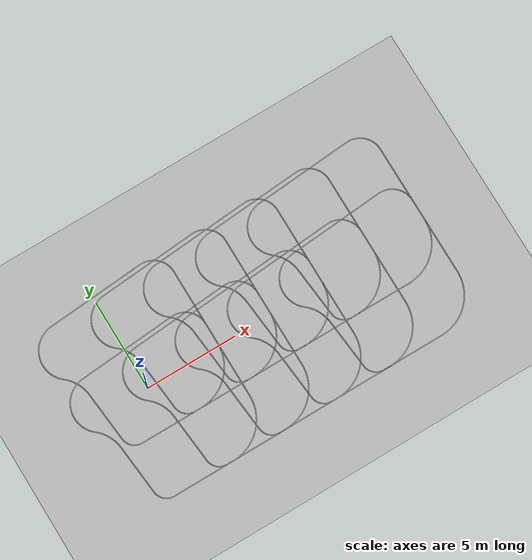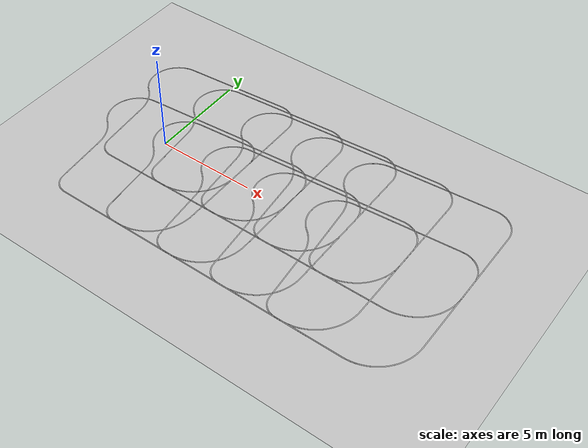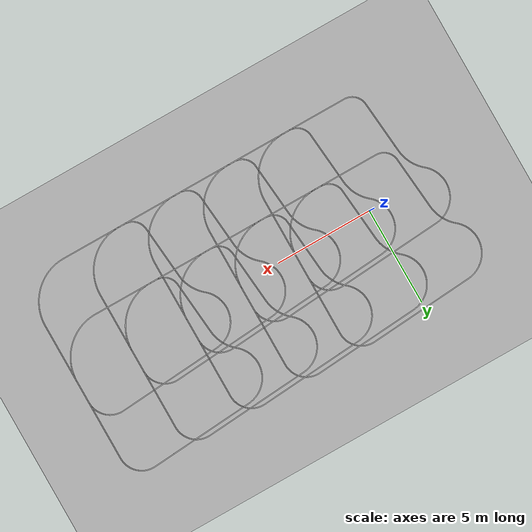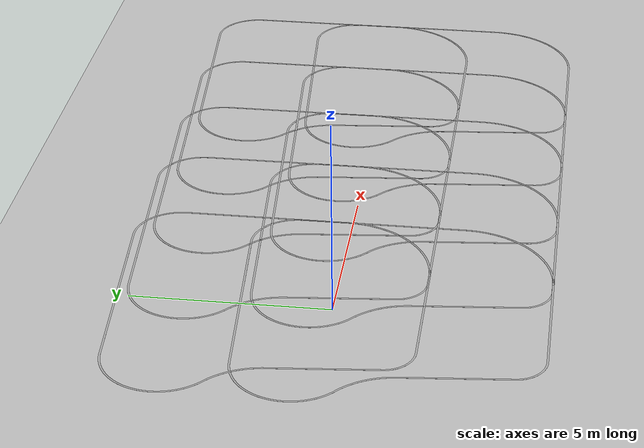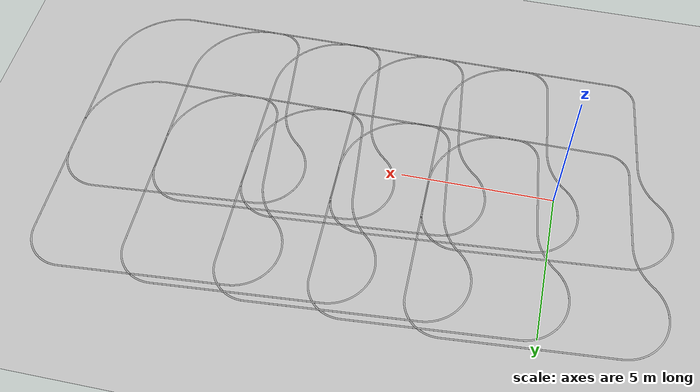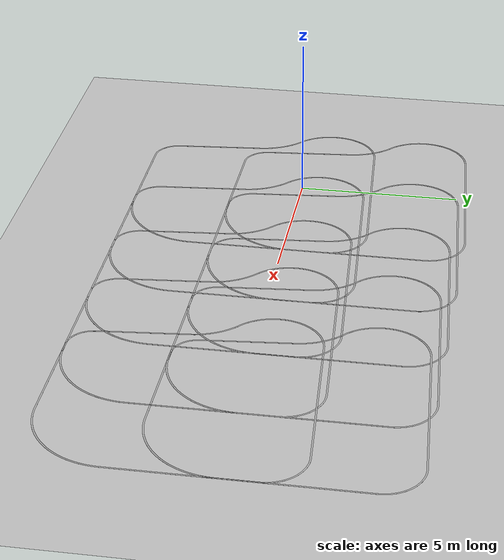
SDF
<sdf version="1.4">
 <world name="default">
  <include><uri>model://ground_plane</uri></include>
  <include><uri>model://sun</uri></include>
  <include><uri>model://white_line</uri><name>left_line</name><pose>0.0 1.524 0.01 0 0 1.5708</pose></include>
  <include><uri>model://white_line</uri><name>left_line2</name><pose>3.0 1.524 0.01 0 0 1.5708</pose></include>
  <include><uri>model://white_line</uri><name>left_line3</name><pose>6.0 1.524 0.01 0 0 1.5708</pose></include>
  <include><uri>model://white_line</uri><name>left_line4</name><pose>9.0 1.524 0.01 0 0 1.5708</pose></include>
  <include><uri>model://white_line</uri><name>left_line5</name><pose>12.0 1.524 0.01 0 0 1.5708</pose></include>
  <include><uri>model://white_line</uri><name>right_line</name><pose>0.0 -1.524 0.01 0 0 1.5708</pose></include>
  <include>
   <uri>model://white_line</uri>
   <name>right_line2</name>
   <pose>3.0 -1.524 0.01 0 0 1.5708</pose>
  </include>
  <include>
   <uri>model://white_line</uri>
   <name>right_line3</name>
   <pose>6.0 -1.524 0.01 0 0 1.5708</pose>
  </include>
  <include>
   <uri>model://white_line</uri>
   <name>right_line4</name>
   <pose>9.0 -1.524 0.01 0 0 1.5708</pose>
  </include>
  <include>
   <uri>model://white_line</uri>
   <name>right_line5</name>
   <pose>12.0 -1.524 0.01 0 0 1.5708</pose>
  </include>
 </world>
</sdf>

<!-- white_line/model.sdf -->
<sdf version="1.5">
  <model name="white_line">
    <static>true</static>
    <link name="link">
      <pose>0 0 0 0 0 0</pose>
      <collision name="collision">
        <geometry>
            <mesh>
              <uri>
                model://white_line/mesh/white_line.stl
              </uri>
              <scale>
                1 1 1
              </scale>
            </mesh>
        </geometry>
      </collision>
      <visual name="visual">
        <cast_shadows>false</cast_shadows>
        <geometry>
            <mesh>
              <uri>
                model://white_line/mesh/white_line.stl
              </uri>
              <scale>
                1 1 1
              </scale>
            </mesh>
        </geometry>
      </visual>
    </link>
  </model>
</sdf>
